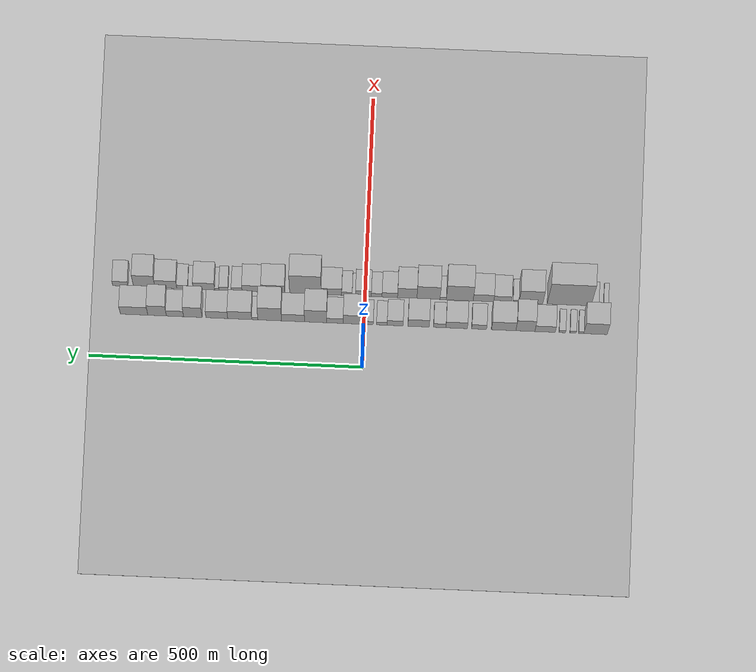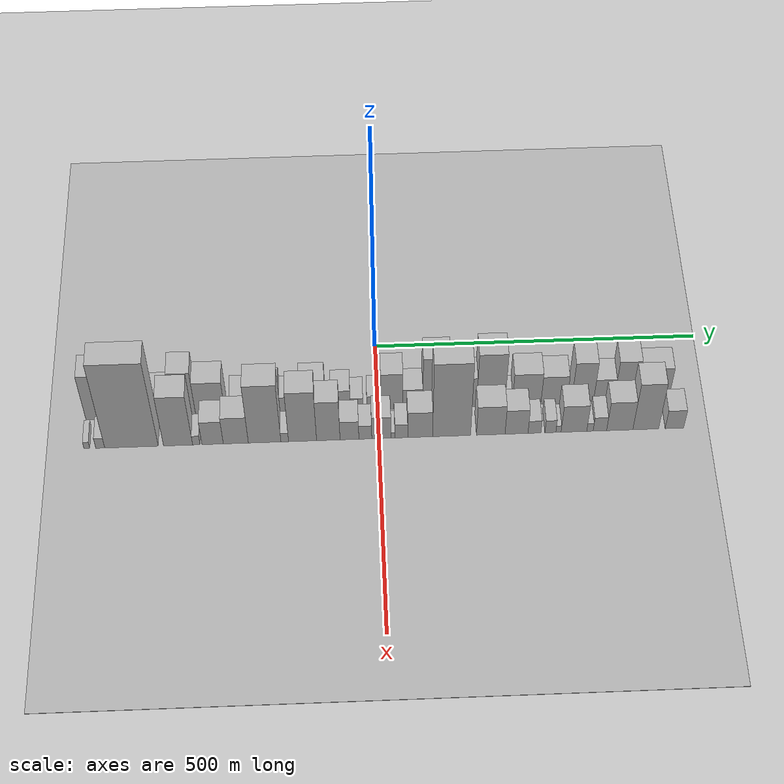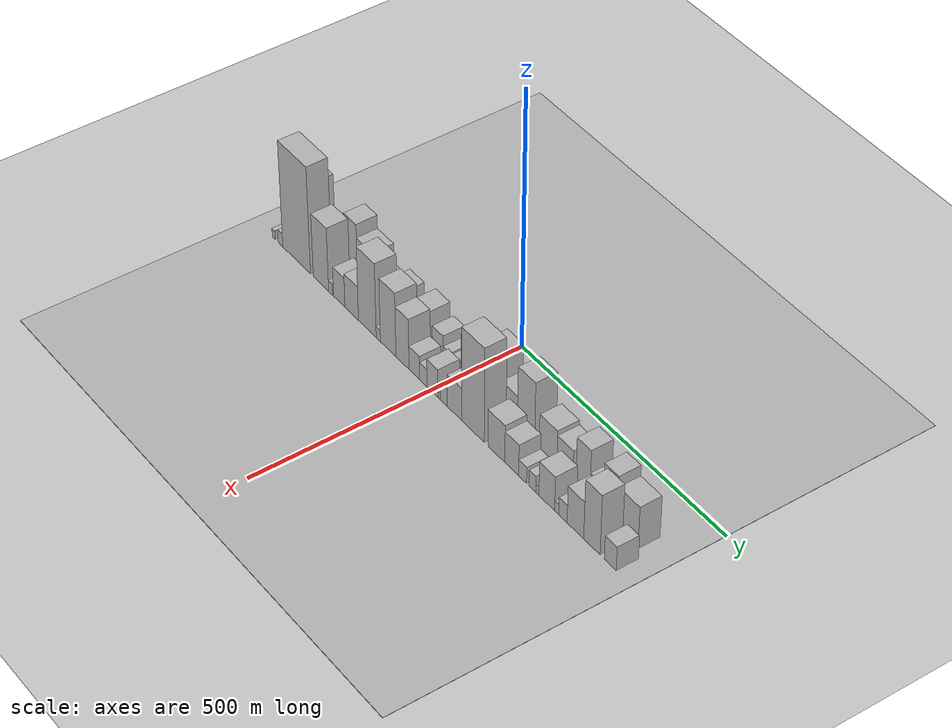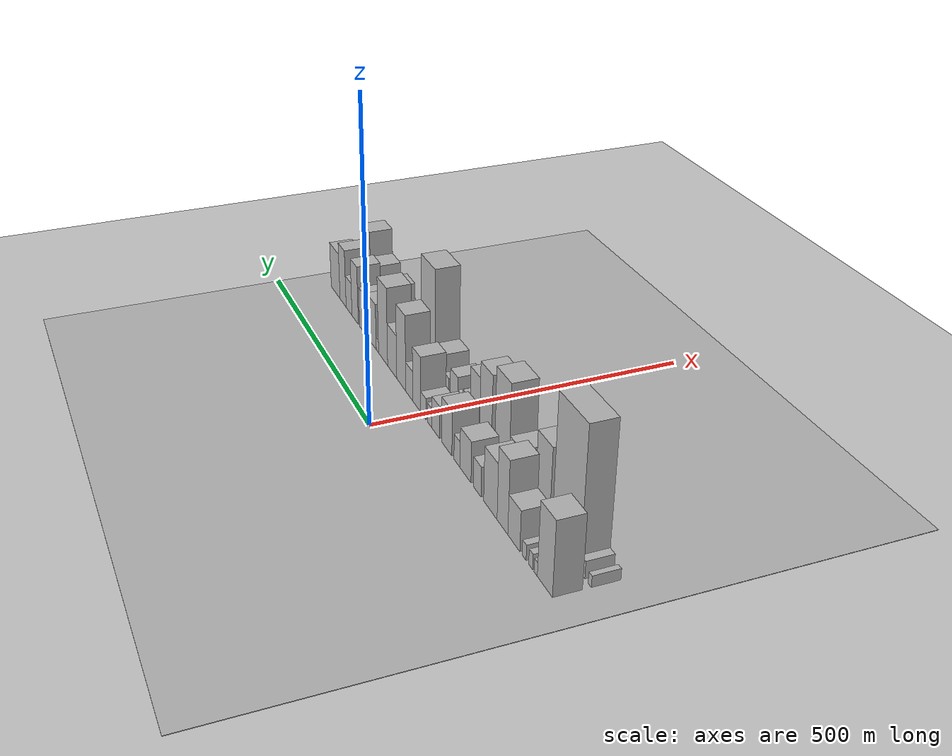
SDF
<sdf version="1.6">
 <world name="default">
  <include><name>ground_plane_1</name><uri>model://HANNAS_ground_plane</uri></include>
  <include>
   <name>ground_plane_2</name>
   <uri>model://HANNAS_ground_plane</uri>
   <pose>100 0 0  0 0 0</pose>
  </include>
  <model name="building_1">
   <static>1</static>
   <pose>100.0000 -422.5716 0 0.000000 0.000000 0.000000</pose>
   <link name="link">
    <pose>0 0 57.00 0 0 0</pose>
    <collision name="collision"><geometry><box><size>40.0000 42.8567 114.0000</size></box></geometry></collision>
    <visual name="visual">
     <cast_shadows>0</cast_shadows>
     <geometry><box><size>40.0000 42.8567 114.0000</size></box></geometry>
     <material>
      <script>
       <uri>model://HANNAS_wall/materials/scripts</uri>
       <uri>model://HANNAS_wall/materials/textures</uri>
       <name>vrc/HANNAS_wall</name>
      </script>
     </material>
    </visual>
   </link>
  </model>
  <model name="building_2">
   <static>1</static>
   <pose>100.0000 -396.2566 0 0.000000 0.000000 0.000000</pose>
   <link name="link">
    <pose>0 0 10.50 0 0 0</pose>
    <collision name="collision"><geometry><box><size>40.0000 9.7734 21.0000</size></box></geometry></collision>
    <visual name="visual">
     <cast_shadows>0</cast_shadows>
     <geometry><box><size>40.0000 9.7734 21.0000</size></box></geometry>
     <material>
      <script>
       <uri>model://HANNAS_wall/materials/scripts</uri>
       <uri>model://HANNAS_wall/materials/textures</uri>
       <name>vrc/HANNAS_wall</name>
      </script>
     </material>
    </visual>
   </link>
  </model>
  <model name="building_3">
   <static>1</static>
   <pose>100.0000 -381.5733 0 0.000000 0.000000 0.000000</pose>
   <link name="link">
    <pose>0 0 12.00 0 0 0</pose>
    <collision name="collision"><geometry><box><size>40.0000 11.5931 24.0000</size></box></geometry></collision>
    <visual name="visual">
     <cast_shadows>0</cast_shadows>
     <geometry><box><size>40.0000 11.5931 24.0000</size></box></geometry>
     <material>
      <script>
       <uri>model://HANNAS_wall/materials/scripts</uri>
       <uri>model://HANNAS_wall/materials/textures</uri>
       <name>vrc/HANNAS_wall</name>
      </script>
     </material>
    </visual>
   </link>
  </model>
  <model name="building_4">
   <static>1</static>
   <pose>100.0000 -361.8860 0 0.000000 0.000000 0.000000</pose>
   <link name="link">
    <pose>0 0 12.00 0 0 0</pose>
    <collision name="collision"><geometry><box><size>40.0000 11.7815 24.0000</size></box></geometry></collision>
    <visual name="visual">
     <cast_shadows>0</cast_shadows>
     <geometry><box><size>40.0000 11.7815 24.0000</size></box></geometry>
     <material>
      <script>
       <uri>model://HANNAS_wall/materials/scripts</uri>
       <uri>model://HANNAS_wall/materials/textures</uri>
       <name>vrc/HANNAS_wall</name>
      </script>
     </material>
    </visual>
   </link>
  </model>
  <model name="building_5">
   <static>1</static>
   <pose>100.0000 -330.3271 0 0.000000 0.000000 0.000000</pose>
   <link name="link">
    <pose>0 0 31.50 0 0 0</pose>
    <collision name="collision"><geometry><box><size>40.0000 37.3363 63.0000</size></box></geometry></collision>
    <visual name="visual">
     <cast_shadows>0</cast_shadows>
     <geometry><box><size>40.0000 37.3363 63.0000</size></box></geometry>
     <material>
      <script>
       <uri>model://HANNAS_wall/materials/scripts</uri>
       <uri>model://HANNAS_wall/materials/textures</uri>
       <name>vrc/HANNAS_wall</name>
      </script>
     </material>
    </visual>
   </link>
  </model>
  <model name="building_6">
   <static>1</static>
   <pose>100.0000 -294.3224 0 0.000000 0.000000 0.000000</pose>
   <link name="link">
    <pose>0 0 57.00 0 0 0</pose>
    <collision name="collision"><geometry><box><size>40.0000 34.6731 114.0000</size></box></geometry></collision>
    <visual name="visual">
     <cast_shadows>0</cast_shadows>
     <geometry><box><size>40.0000 34.6731 114.0000</size></box></geometry>
     <material>
      <script>
       <uri>model://HANNAS_wall/materials/scripts</uri>
       <uri>model://HANNAS_wall/materials/textures</uri>
       <name>vrc/HANNAS_wall</name>
      </script>
     </material>
    </visual>
   </link>
  </model>
  <model name="building_7">
   <static>1</static>
   <pose>100.0000 -254.6565 0 0.000000 0.000000 0.000000</pose>
   <link name="link">
    <pose>0 0 43.50 0 0 0</pose>
    <collision name="collision"><geometry><box><size>40.0000 44.6588 87.0000</size></box></geometry></collision>
    <visual name="visual">
     <cast_shadows>0</cast_shadows>
     <geometry><box><size>40.0000 44.6588 87.0000</size></box></geometry>
     <material>
      <script>
       <uri>model://HANNAS_wall/materials/scripts</uri>
       <uri>model://HANNAS_wall/materials/textures</uri>
       <name>vrc/HANNAS_wall</name>
      </script>
     </material>
    </visual>
   </link>
  </model>
  <model name="building_8">
   <static>1</static>
   <pose>100.0000 -209.7576 0 0.000000 0.000000 0.000000</pose>
   <link name="link">
    <pose>0 0 24.00 0 0 0</pose>
    <collision name="collision"><geometry><box><size>40.0000 27.1389 48.0000</size></box></geometry></collision>
    <visual name="visual">
     <cast_shadows>0</cast_shadows>
     <geometry><box><size>40.0000 27.1389 48.0000</size></box></geometry>
     <material>
      <script>
       <uri>model://HANNAS_wall/materials/scripts</uri>
       <uri>model://HANNAS_wall/materials/textures</uri>
       <name>vrc/HANNAS_wall</name>
      </script>
     </material>
    </visual>
   </link>
  </model>
  <model name="building_9">
   <static>1</static>
   <pose>100.0000 -168.5435 0 0.000000 0.000000 0.000000</pose>
   <link name="link">
    <pose>0 0 33.00 0 0 0</pose>
    <collision name="collision"><geometry><box><size>40.0000 39.2893 66.0000</size></box></geometry></collision>
    <visual name="visual">
     <cast_shadows>0</cast_shadows>
     <geometry><box><size>40.0000 39.2893 66.0000</size></box></geometry>
     <material>
      <script>
       <uri>model://HANNAS_wall/materials/scripts</uri>
       <uri>model://HANNAS_wall/materials/textures</uri>
       <name>vrc/HANNAS_wall</name>
      </script>
     </material>
    </visual>
   </link>
  </model>
  <model name="building_10">
   <static>1</static>
   <pose>100.0000 -137.6953 0 0.000000 0.000000 0.000000</pose>
   <link name="link">
    <pose>0 0 21.00 0 0 0</pose>
    <collision name="collision"><geometry><box><size>40.0000 22.4071 42.0000</size></box></geometry></collision>
    <visual name="visual">
     <cast_shadows>0</cast_shadows>
     <geometry><box><size>40.0000 22.4071 42.0000</size></box></geometry>
     <material>
      <script>
       <uri>model://HANNAS_wall/materials/scripts</uri>
       <uri>model://HANNAS_wall/materials/textures</uri>
       <name>vrc/HANNAS_wall</name>
      </script>
     </material>
    </visual>
   </link>
  </model>
  <model name="building_11">
   <static>1</static>
   <pose>100.0000 -99.1047 0 0.000000 0.000000 0.000000</pose>
   <link name="link">
    <pose>0 0 37.50 0 0 0</pose>
    <collision name="collision"><geometry><box><size>40.0000 38.7741 75.0000</size></box></geometry></collision>
    <visual name="visual">
     <cast_shadows>0</cast_shadows>
     <geometry><box><size>40.0000 38.7741 75.0000</size></box></geometry>
     <material>
      <script>
       <uri>model://HANNAS_wall/materials/scripts</uri>
       <uri>model://HANNAS_wall/materials/textures</uri>
       <name>vrc/HANNAS_wall</name>
      </script>
     </material>
    </visual>
   </link>
  </model>
  <model name="building_12">
   <static>1</static>
   <pose>100.0000 -56.1446 0 0.000000 0.000000 0.000000</pose>
   <link name="link">
    <pose>0 0 27.00 0 0 0</pose>
    <collision name="collision"><geometry><box><size>40.0000 29.1462 54.0000</size></box></geometry></collision>
    <visual name="visual">
     <cast_shadows>0</cast_shadows>
     <geometry><box><size>40.0000 29.1462 54.0000</size></box></geometry>
     <material>
      <script>
       <uri>model://HANNAS_wall/materials/scripts</uri>
       <uri>model://HANNAS_wall/materials/textures</uri>
       <name>vrc/HANNAS_wall</name>
      </script>
     </material>
    </visual>
   </link>
  </model>
  <model name="building_13">
   <static>1</static>
   <pose>100.0000 -31.8680 0 0.000000 0.000000 0.000000</pose>
   <link name="link">
    <pose>0 0 16.50 0 0 0</pose>
    <collision name="collision"><geometry><box><size>40.0000 19.4069 33.0000</size></box></geometry></collision>
    <visual name="visual">
     <cast_shadows>0</cast_shadows>
     <geometry><box><size>40.0000 19.4069 33.0000</size></box></geometry>
     <material>
      <script>
       <uri>model://HANNAS_wall/materials/scripts</uri>
       <uri>model://HANNAS_wall/materials/textures</uri>
       <name>vrc/HANNAS_wall</name>
      </script>
     </material>
    </visual>
   </link>
  </model>
  <model name="building_14">
   <static>1</static>
   <pose>100.0000 -5.4731 0 0.000000 0.000000 0.000000</pose>
   <link name="link">
    <pose>0 0 18.00 0 0 0</pose>
    <collision name="collision"><geometry><box><size>40.0000 21.3829 36.0000</size></box></geometry></collision>
    <visual name="visual">
     <cast_shadows>0</cast_shadows>
     <geometry><box><size>40.0000 21.3829 36.0000</size></box></geometry>
     <material>
      <script>
       <uri>model://HANNAS_wall/materials/scripts</uri>
       <uri>model://HANNAS_wall/materials/textures</uri>
       <name>vrc/HANNAS_wall</name>
      </script>
     </material>
    </visual>
   </link>
  </model>
  <model name="building_15">
   <static>1</static>
   <pose>100.0000 21.9943 0 0.000000 0.000000 0.000000</pose>
   <link name="link">
    <pose>0 0 46.50 0 0 0</pose>
    <collision name="collision"><geometry><box><size>40.0000 33.5518 93.0000</size></box></geometry></collision>
    <visual name="visual">
     <cast_shadows>0</cast_shadows>
     <geometry><box><size>40.0000 33.5518 93.0000</size></box></geometry>
     <material>
      <script>
       <uri>model://HANNAS_wall/materials/scripts</uri>
       <uri>model://HANNAS_wall/materials/textures</uri>
       <name>vrc/HANNAS_wall</name>
      </script>
     </material>
    </visual>
   </link>
  </model>
  <model name="building_16">
   <static>1</static>
   <pose>100.0000 53.8371 0 0.000000 0.000000 0.000000</pose>
   <link name="link">
    <pose>0 0 25.50 0 0 0</pose>
    <collision name="collision"><geometry><box><size>40.0000 30.1340 51.0000</size></box></geometry></collision>
    <visual name="visual">
     <cast_shadows>0</cast_shadows>
     <geometry><box><size>40.0000 30.1340 51.0000</size></box></geometry>
     <material>
      <script>
       <uri>model://HANNAS_wall/materials/scripts</uri>
       <uri>model://HANNAS_wall/materials/textures</uri>
       <name>vrc/HANNAS_wall</name>
      </script>
     </material>
    </visual>
   </link>
  </model>
  <model name="building_17">
   <static>1</static>
   <pose>100.0000 89.1470 0 0.000000 0.000000 0.000000</pose>
   <link name="link">
    <pose>0 0 64.50 0 0 0</pose>
    <collision name="collision"><geometry><box><size>40.0000 40.4858 129.0000</size></box></geometry></collision>
    <visual name="visual">
     <cast_shadows>0</cast_shadows>
     <geometry><box><size>40.0000 40.4858 129.0000</size></box></geometry>
     <material>
      <script>
       <uri>model://HANNAS_wall/materials/scripts</uri>
       <uri>model://HANNAS_wall/materials/textures</uri>
       <name>vrc/HANNAS_wall</name>
      </script>
     </material>
    </visual>
   </link>
  </model>
  <model name="building_18">
   <static>1</static>
   <pose>100.0000 130.3772 0 0.000000 0.000000 0.000000</pose>
   <link name="link">
    <pose>0 0 37.50 0 0 0</pose>
    <collision name="collision"><geometry><box><size>40.0000 41.9746 75.0000</size></box></geometry></collision>
    <visual name="visual">
     <cast_shadows>0</cast_shadows>
     <geometry><box><size>40.0000 41.9746 75.0000</size></box></geometry>
     <material>
      <script>
       <uri>model://HANNAS_wall/materials/scripts</uri>
       <uri>model://HANNAS_wall/materials/textures</uri>
       <name>vrc/HANNAS_wall</name>
      </script>
     </material>
    </visual>
   </link>
  </model>
  <model name="building_19">
   <static>1</static>
   <pose>100.0000 173.0050 0 0.000000 0.000000 0.000000</pose>
   <link name="link">
    <pose>0 0 67.50 0 0 0</pose>
    <collision name="collision"><geometry><box><size>40.0000 43.2809 135.0000</size></box></geometry></collision>
    <visual name="visual">
     <cast_shadows>0</cast_shadows>
     <geometry><box><size>40.0000 43.2809 135.0000</size></box></geometry>
     <material>
      <script>
       <uri>model://HANNAS_wall/materials/scripts</uri>
       <uri>model://HANNAS_wall/materials/textures</uri>
       <name>vrc/HANNAS_wall</name>
      </script>
     </material>
    </visual>
   </link>
  </model>
  <model name="building_20">
   <static>1</static>
   <pose>100.0000 200.3186 0 0.000000 0.000000 0.000000</pose>
   <link name="link">
    <pose>0 0 12.00 0 0 0</pose>
    <collision name="collision"><geometry><box><size>40.0000 11.3463 24.0000</size></box></geometry></collision>
    <visual name="visual">
     <cast_shadows>0</cast_shadows>
     <geometry><box><size>40.0000 11.3463 24.0000</size></box></geometry>
     <material>
      <script>
       <uri>model://HANNAS_wall/materials/scripts</uri>
       <uri>model://HANNAS_wall/materials/textures</uri>
       <name>vrc/HANNAS_wall</name>
      </script>
     </material>
    </visual>
   </link>
  </model>
  <model name="building_21">
   <static>1</static>
   <pose>100.0000 227.9057 0 0.000000 0.000000 0.000000</pose>
   <link name="link">
    <pose>0 0 40.50 0 0 0</pose>
    <collision name="collision"><geometry><box><size>40.0000 43.8278 81.0000</size></box></geometry></collision>
    <visual name="visual">
     <cast_shadows>0</cast_shadows>
     <geometry><box><size>40.0000 43.8278 81.0000</size></box></geometry>
     <material>
      <script>
       <uri>model://HANNAS_wall/materials/scripts</uri>
       <uri>model://HANNAS_wall/materials/textures</uri>
       <name>vrc/HANNAS_wall</name>
      </script>
     </material>
    </visual>
   </link>
  </model>
  <model name="building_22">
   <static>1</static>
   <pose>100.0000 269.7281 0 0.000000 0.000000 0.000000</pose>
   <link name="link">
    <pose>0 0 36.00 0 0 0</pose>
    <collision name="collision"><geometry><box><size>40.0000 39.8171 72.0000</size></box></geometry></collision>
    <visual name="visual">
     <cast_shadows>0</cast_shadows>
     <geometry><box><size>40.0000 39.8171 72.0000</size></box></geometry>
     <material>
      <script>
       <uri>model://HANNAS_wall/materials/scripts</uri>
       <uri>model://HANNAS_wall/materials/textures</uri>
       <name>vrc/HANNAS_wall</name>
      </script>
     </material>
    </visual>
   </link>
  </model>
  <model name="building_23">
   <static>1</static>
   <pose>100.0000 313.5519 0 0.000000 0.000000 0.000000</pose>
   <link name="link">
    <pose>0 0 52.50 0 0 0</pose>
    <collision name="collision"><geometry><box><size>40.0000 33.8306 105.0000</size></box></geometry></collision>
    <visual name="visual">
     <cast_shadows>0</cast_shadows>
     <geometry><box><size>40.0000 33.8306 105.0000</size></box></geometry>
     <material>
      <script>
       <uri>model://HANNAS_wall/materials/scripts</uri>
       <uri>model://HANNAS_wall/materials/textures</uri>
       <name>vrc/HANNAS_wall</name>
      </script>
     </material>
    </visual>
   </link>
  </model>
  <model name="building_24">
   <static>1</static>
   <pose>100.0000 346.1967 0 0.000000 0.000000 0.000000</pose>
   <link name="link">
    <pose>0 0 30.00 0 0 0</pose>
    <collision name="collision"><geometry><box><size>40.0000 31.4590 60.0000</size></box></geometry></collision>
    <visual name="visual">
     <cast_shadows>0</cast_shadows>
     <geometry><box><size>40.0000 31.4590 60.0000</size></box></geometry>
     <material>
      <script>
       <uri>model://HANNAS_wall/materials/scripts</uri>
       <uri>model://HANNAS_wall/materials/textures</uri>
       <name>vrc/HANNAS_wall</name>
      </script>
     </material>
    </visual>
   </link>
  </model>
  <model name="building_25">
   <static>1</static>
   <pose>100.0000 378.9110 0 0.000000 0.000000 0.000000</pose>
   <link name="link">
    <pose>0 0 52.50 0 0 0</pose>
    <collision name="collision"><geometry><box><size>40.0000 33.9696 105.0000</size></box></geometry></collision>
    <visual name="visual">
     <cast_shadows>0</cast_shadows>
     <geometry><box><size>40.0000 33.9696 105.0000</size></box></geometry>
     <material>
      <script>
       <uri>model://HANNAS_wall/materials/scripts</uri>
       <uri>model://HANNAS_wall/materials/textures</uri>
       <name>vrc/HANNAS_wall</name>
      </script>
     </material>
    </visual>
   </link>
  </model>
  <model name="building_26">
   <static>1</static>
   <pose>100.0000 421.0413 0 0.000000 0.000000 0.000000</pose>
   <link name="link">
    <pose>0 0 42.00 0 0 0</pose>
    <collision name="collision"><geometry><box><size>40.0000 50.2909 84.0000</size></box></geometry></collision>
    <visual name="visual">
     <cast_shadows>0</cast_shadows>
     <geometry><box><size>40.0000 50.2909 84.0000</size></box></geometry>
     <material>
      <script>
       <uri>model://HANNAS_wall/materials/scripts</uri>
       <uri>model://HANNAS_wall/materials/textures</uri>
       <name>vrc/HANNAS_wall</name>
      </script>
     </material>
    </visual>
   </link>
  </model>
  <model name="building_27">
   <static>1</static>
   <pose>152.0000 -439.6267 0 0.000000 0.000000 0.000000</pose>
   <link name="link">
    <pose>0 0 9.00 0 0 0</pose>
    <collision name="collision"><geometry><box><size>40.0000 8.7467 18.0000</size></box></geometry></collision>
    <visual name="visual">
     <cast_shadows>0</cast_shadows>
     <geometry><box><size>40.0000 8.7467 18.0000</size></box></geometry>
     <material>
      <script>
       <uri>model://HANNAS_wall/materials/scripts</uri>
       <uri>model://HANNAS_wall/materials/textures</uri>
       <name>vrc/HANNAS_wall</name>
      </script>
     </material>
    </visual>
   </link>
  </model>
  <model name="building_28">
   <static>1</static>
   <pose>152.0000 -419.5399 0 0.000000 0.000000 0.000000</pose>
   <link name="link">
    <pose>0 0 13.50 0 0 0</pose>
    <collision name="collision"><geometry><box><size>40.0000 13.4268 27.0000</size></box></geometry></collision>
    <visual name="visual">
     <cast_shadows>0</cast_shadows>
     <geometry><box><size>40.0000 13.4268 27.0000</size></box></geometry>
     <material>
      <script>
       <uri>model://HANNAS_wall/materials/scripts</uri>
       <uri>model://HANNAS_wall/materials/textures</uri>
       <name>vrc/HANNAS_wall</name>
      </script>
     </material>
    </visual>
   </link>
  </model>
  <model name="building_29">
   <static>1</static>
   <pose>152.0000 -372.6098 0 0.000000 0.000000 0.000000</pose>
   <link name="link">
    <pose>0 0 108.00 0 0 0</pose>
    <collision name="collision"><geometry><box><size>40.0000 80.4334 216.0000</size></box></geometry></collision>
    <visual name="visual">
     <cast_shadows>0</cast_shadows>
     <geometry><box><size>40.0000 80.4334 216.0000</size></box></geometry>
     <material>
      <script>
       <uri>model://HANNAS_wall/materials/scripts</uri>
       <uri>model://HANNAS_wall/materials/textures</uri>
       <name>vrc/HANNAS_wall</name>
      </script>
     </material>
    </visual>
   </link>
  </model>
  <model name="building_30">
   <static>1</static>
   <pose>152.0000 -302.5058 0 0.000000 0.000000 0.000000</pose>
   <link name="link">
    <pose>0 0 64.50 0 0 0</pose>
    <collision name="collision"><geometry><box><size>40.0000 43.7744 129.0000</size></box></geometry></collision>
    <visual name="visual">
     <cast_shadows>0</cast_shadows>
     <geometry><box><size>40.0000 43.7744 129.0000</size></box></geometry>
     <material>
      <script>
       <uri>model://HANNAS_wall/materials/scripts</uri>
       <uri>model://HANNAS_wall/materials/textures</uri>
       <name>vrc/HANNAS_wall</name>
      </script>
     </material>
    </visual>
   </link>
  </model>
  <model name="building_31">
   <static>1</static>
   <pose>152.0000 -275.1487 0 0.000000 0.000000 0.000000</pose>
   <link name="link">
    <pose>0 0 12.00 0 0 0</pose>
    <collision name="collision"><geometry><box><size>40.0000 10.9399 24.0000</size></box></geometry></collision>
    <visual name="visual">
     <cast_shadows>0</cast_shadows>
     <geometry><box><size>40.0000 10.9399 24.0000</size></box></geometry>
     <material>
      <script>
       <uri>model://HANNAS_wall/materials/scripts</uri>
       <uri>model://HANNAS_wall/materials/textures</uri>
       <name>vrc/HANNAS_wall</name>
      </script>
     </material>
    </visual>
   </link>
  </model>
  <model name="building_32">
   <static>1</static>
   <pose>152.0000 -250.6332 0 0.000000 0.000000 0.000000</pose>
   <link name="link">
    <pose>0 0 30.00 0 0 0</pose>
    <collision name="collision"><geometry><box><size>40.0000 32.0910 60.0000</size></box></geometry></collision>
    <visual name="visual">
     <cast_shadows>0</cast_shadows>
     <geometry><box><size>40.0000 32.0910 60.0000</size></box></geometry>
     <material>
      <script>
       <uri>model://HANNAS_wall/materials/scripts</uri>
       <uri>model://HANNAS_wall/materials/textures</uri>
       <name>vrc/HANNAS_wall</name>
      </script>
     </material>
    </visual>
   </link>
  </model>
  <model name="building_33">
   <static>1</static>
   <pose>152.0000 -215.6868 0 0.000000 0.000000 0.000000</pose>
   <link name="link">
    <pose>0 0 34.50 0 0 0</pose>
    <collision name="collision"><geometry><box><size>40.0000 37.8018 69.0000</size></box></geometry></collision>
    <visual name="visual">
     <cast_shadows>0</cast_shadows>
     <geometry><box><size>40.0000 37.8018 69.0000</size></box></geometry>
     <material>
      <script>
       <uri>model://HANNAS_wall/materials/scripts</uri>
       <uri>model://HANNAS_wall/materials/textures</uri>
       <name>vrc/HANNAS_wall</name>
      </script>
     </material>
    </visual>
   </link>
  </model>
  <model name="building_34">
   <static>1</static>
   <pose>152.0000 -172.2605 0 0.000000 0.000000 0.000000</pose>
   <link name="link">
    <pose>0 0 75.00 0 0 0</pose>
    <collision name="collision"><geometry><box><size>40.0000 49.0510 150.0000</size></box></geometry></collision>
    <visual name="visual">
     <cast_shadows>0</cast_shadows>
     <geometry><box><size>40.0000 49.0510 150.0000</size></box></geometry>
     <material>
      <script>
       <uri>model://HANNAS_wall/materials/scripts</uri>
       <uri>model://HANNAS_wall/materials/textures</uri>
       <name>vrc/HANNAS_wall</name>
      </script>
     </material>
    </visual>
   </link>
  </model>
  <model name="building_35">
   <static>1</static>
   <pose>152.0000 -141.9808 0 0.000000 0.000000 0.000000</pose>
   <link name="link">
    <pose>0 0 12.00 0 0 0</pose>
    <collision name="collision"><geometry><box><size>40.0000 11.5083 24.0000</size></box></geometry></collision>
    <visual name="visual">
     <cast_shadows>0</cast_shadows>
     <geometry><box><size>40.0000 11.5083 24.0000</size></box></geometry>
     <material>
      <script>
       <uri>model://HANNAS_wall/materials/scripts</uri>
       <uri>model://HANNAS_wall/materials/textures</uri>
       <name>vrc/HANNAS_wall</name>
      </script>
     </material>
    </visual>
   </link>
  </model>
  <model name="building_36">
   <static>1</static>
   <pose>152.0000 -115.0605 0 0.000000 0.000000 0.000000</pose>
   <link name="link">
    <pose>0 0 64.50 0 0 0</pose>
    <collision name="collision"><geometry><box><size>40.0000 42.3325 129.0000</size></box></geometry></collision>
    <visual name="visual">
     <cast_shadows>0</cast_shadows>
     <geometry><box><size>40.0000 42.3325 129.0000</size></box></geometry>
     <material>
      <script>
       <uri>model://HANNAS_wall/materials/scripts</uri>
       <uri>model://HANNAS_wall/materials/textures</uri>
       <name>vrc/HANNAS_wall</name>
      </script>
     </material>
    </visual>
   </link>
  </model>
  <model name="building_37">
   <static>1</static>
   <pose>152.0000 -76.1947 0 0.000000 0.000000 0.000000</pose>
   <link name="link">
    <pose>0 0 51.00 0 0 0</pose>
    <collision name="collision"><geometry><box><size>40.0000 35.3992 102.0000</size></box></geometry></collision>
    <visual name="visual">
     <cast_shadows>0</cast_shadows>
     <geometry><box><size>40.0000 35.3992 102.0000</size></box></geometry>
     <material>
      <script>
       <uri>model://HANNAS_wall/materials/scripts</uri>
       <uri>model://HANNAS_wall/materials/textures</uri>
       <name>vrc/HANNAS_wall</name>
      </script>
     </material>
    </visual>
   </link>
  </model>
  <model name="building_38">
   <static>1</static>
   <pose>152.0000 -44.2855 0 0.000000 0.000000 0.000000</pose>
   <link name="link">
    <pose>0 0 24.00 0 0 0</pose>
    <collision name="collision"><geometry><box><size>40.0000 28.4192 48.0000</size></box></geometry></collision>
    <visual name="visual">
     <cast_shadows>0</cast_shadows>
     <geometry><box><size>40.0000 28.4192 48.0000</size></box></geometry>
     <material>
      <script>
       <uri>model://HANNAS_wall/materials/scripts</uri>
       <uri>model://HANNAS_wall/materials/textures</uri>
       <name>vrc/HANNAS_wall</name>
      </script>
     </material>
    </visual>
   </link>
  </model>
  <model name="building_39">
   <static>1</static>
   <pose>152.0000 -20.3152 0 0.000000 0.000000 0.000000</pose>
   <link name="link">
    <pose>0 0 18.00 0 0 0</pose>
    <collision name="collision"><geometry><box><size>40.0000 19.5214 36.0000</size></box></geometry></collision>
    <visual name="visual">
     <cast_shadows>0</cast_shadows>
     <geometry><box><size>40.0000 19.5214 36.0000</size></box></geometry>
     <material>
      <script>
       <uri>model://HANNAS_wall/materials/scripts</uri>
       <uri>model://HANNAS_wall/materials/textures</uri>
       <name>vrc/HANNAS_wall</name>
      </script>
     </material>
    </visual>
   </link>
  </model>
  <model name="building_40">
   <static>1</static>
   <pose>152.0000 3.9851 0 0.000000 0.000000 0.000000</pose>
   <link name="link">
    <pose>0 0 28.50 0 0 0</pose>
    <collision name="collision"><geometry><box><size>40.0000 29.0792 57.0000</size></box></geometry></collision>
    <visual name="visual">
     <cast_shadows>0</cast_shadows>
     <geometry><box><size>40.0000 29.0792 57.0000</size></box></geometry>
     <material>
      <script>
       <uri>model://HANNAS_wall/materials/scripts</uri>
       <uri>model://HANNAS_wall/materials/textures</uri>
       <name>vrc/HANNAS_wall</name>
      </script>
     </material>
    </visual>
   </link>
  </model>
  <model name="building_41">
   <static>1</static>
   <pose>152.0000 21.5248 0 0.000000 0.000000 0.000000</pose>
   <link name="link">
    <pose>0 0 7.50 0 0 0</pose>
    <collision name="collision"><geometry><box><size>40.0000 6.0003 15.0000</size></box></geometry></collision>
    <visual name="visual">
     <cast_shadows>0</cast_shadows>
     <geometry><box><size>40.0000 6.0003 15.0000</size></box></geometry>
     <material>
      <script>
       <uri>model://HANNAS_wall/materials/scripts</uri>
       <uri>model://HANNAS_wall/materials/textures</uri>
       <name>vrc/HANNAS_wall</name>
      </script>
     </material>
    </visual>
   </link>
  </model>
  <model name="building_42">
   <static>1</static>
   <pose>152.0000 34.1071 0 0.000000 0.000000 0.000000</pose>
   <link name="link">
    <pose>0 0 18.00 0 0 0</pose>
    <collision name="collision"><geometry><box><size>40.0000 19.1642 36.0000</size></box></geometry></collision>
    <visual name="visual">
     <cast_shadows>0</cast_shadows>
     <geometry><box><size>40.0000 19.1642 36.0000</size></box></geometry>
     <material>
      <script>
       <uri>model://HANNAS_wall/materials/scripts</uri>
       <uri>model://HANNAS_wall/materials/textures</uri>
       <name>vrc/HANNAS_wall</name>
      </script>
     </material>
    </visual>
   </link>
  </model>
  <model name="building_43">
   <static>1</static>
   <pose>152.0000 62.4982 0 0.000000 0.000000 0.000000</pose>
   <link name="link">
    <pose>0 0 33.00 0 0 0</pose>
    <collision name="collision"><geometry><box><size>40.0000 37.6181 66.0000</size></box></geometry></collision>
    <visual name="visual">
     <cast_shadows>0</cast_shadows>
     <geometry><box><size>40.0000 37.6181 66.0000</size></box></geometry>
     <material>
      <script>
       <uri>model://HANNAS_wall/materials/scripts</uri>
       <uri>model://HANNAS_wall/materials/textures</uri>
       <name>vrc/HANNAS_wall</name>
      </script>
     </material>
    </visual>
   </link>
  </model>
  <model name="building_44">
   <static>1</static>
   <pose>152.0000 110.1167 0 0.000000 0.000000 0.000000</pose>
   <link name="link">
    <pose>0 0 94.50 0 0 0</pose>
    <collision name="collision"><geometry><box><size>40.0000 57.6191 189.0000</size></box></geometry></collision>
    <visual name="visual">
     <cast_shadows>0</cast_shadows>
     <geometry><box><size>40.0000 57.6191 189.0000</size></box></geometry>
     <material>
      <script>
       <uri>model://HANNAS_wall/materials/scripts</uri>
       <uri>model://HANNAS_wall/materials/textures</uri>
       <name>vrc/HANNAS_wall</name>
      </script>
     </material>
    </visual>
   </link>
  </model>
  <model name="building_45">
   <static>1</static>
   <pose>152.0000 169.5529 0 0.000000 0.000000 0.000000</pose>
   <link name="link">
    <pose>0 0 37.50 0 0 0</pose>
    <collision name="collision"><geometry><box><size>40.0000 43.2534 75.0000</size></box></geometry></collision>
    <visual name="visual">
     <cast_shadows>0</cast_shadows>
     <geometry><box><size>40.0000 43.2534 75.0000</size></box></geometry>
     <material>
      <script>
       <uri>model://HANNAS_wall/materials/scripts</uri>
       <uri>model://HANNAS_wall/materials/textures</uri>
       <name>vrc/HANNAS_wall</name>
      </script>
     </material>
    </visual>
   </link>
  </model>
  <model name="building_46">
   <static>1</static>
   <pose>152.0000 208.6126 0 0.000000 0.000000 0.000000</pose>
   <link name="link">
    <pose>0 0 31.50 0 0 0</pose>
    <collision name="collision"><geometry><box><size>40.0000 34.8659 63.0000</size></box></geometry></collision>
    <visual name="visual">
     <cast_shadows>0</cast_shadows>
     <geometry><box><size>40.0000 34.8659 63.0000</size></box></geometry>
     <material>
      <script>
       <uri>model://HANNAS_wall/materials/scripts</uri>
       <uri>model://HANNAS_wall/materials/textures</uri>
       <name>vrc/HANNAS_wall</name>
      </script>
     </material>
    </visual>
   </link>
  </model>
  <model name="building_47">
   <static>1</static>
   <pose>152.0000 235.8622 0 0.000000 0.000000 0.000000</pose>
   <link name="link">
    <pose>0 0 16.50 0 0 0</pose>
    <collision name="collision"><geometry><box><size>40.0000 19.6334 33.0000</size></box></geometry></collision>
    <visual name="visual">
     <cast_shadows>0</cast_shadows>
     <geometry><box><size>40.0000 19.6334 33.0000</size></box></geometry>
     <material>
      <script>
       <uri>model://HANNAS_wall/materials/scripts</uri>
       <uri>model://HANNAS_wall/materials/textures</uri>
       <name>vrc/HANNAS_wall</name>
      </script>
     </material>
    </visual>
   </link>
  </model>
  <model name="building_48">
   <static>1</static>
   <pose>152.0000 260.0020 0 0.000000 0.000000 0.000000</pose>
   <link name="link">
    <pose>0 0 16.50 0 0 0</pose>
    <collision name="collision"><geometry><box><size>40.0000 16.6463 33.0000</size></box></geometry></collision>
    <visual name="visual">
     <cast_shadows>0</cast_shadows>
     <geometry><box><size>40.0000 16.6463 33.0000</size></box></geometry>
     <material>
      <script>
       <uri>model://HANNAS_wall/materials/scripts</uri>
       <uri>model://HANNAS_wall/materials/textures</uri>
       <name>vrc/HANNAS_wall</name>
      </script>
     </material>
    </visual>
   </link>
  </model>
  <model name="building_49">
   <static>1</static>
   <pose>152.0000 272.2430 0 0.000000 0.000000 0.000000</pose>
   <link name="link">
    <pose>0 0 9.00 0 0 0</pose>
    <collision name="collision"><geometry><box><size>40.0000 7.8358 18.0000</size></box></geometry></collision>
    <visual name="visual">
     <cast_shadows>0</cast_shadows>
     <geometry><box><size>40.0000 7.8358 18.0000</size></box></geometry>
     <material>
      <script>
       <uri>model://HANNAS_wall/materials/scripts</uri>
       <uri>model://HANNAS_wall/materials/textures</uri>
       <name>vrc/HANNAS_wall</name>
      </script>
     </material>
    </visual>
   </link>
  </model>
  <model name="building_50">
   <static>1</static>
   <pose>152.0000 295.6961 0 0.000000 0.000000 0.000000</pose>
   <link name="link">
    <pose>0 0 34.50 0 0 0</pose>
    <collision name="collision"><geometry><box><size>40.0000 39.0704 69.0000</size></box></geometry></collision>
    <visual name="visual">
     <cast_shadows>0</cast_shadows>
     <geometry><box><size>40.0000 39.0704 69.0000</size></box></geometry>
     <material>
      <script>
       <uri>model://HANNAS_wall/materials/scripts</uri>
       <uri>model://HANNAS_wall/materials/textures</uri>
       <name>vrc/HANNAS_wall</name>
      </script>
     </material>
    </visual>
   </link>
  </model>
  <model name="building_51">
   <static>1</static>
   <pose>152.0000 320.1043 0 0.000000 0.000000 0.000000</pose>
   <link name="link">
    <pose>0 0 10.50 0 0 0</pose>
    <collision name="collision"><geometry><box><size>40.0000 9.7459 21.0000</size></box></geometry></collision>
    <visual name="visual">
     <cast_shadows>0</cast_shadows>
     <geometry><box><size>40.0000 9.7459 21.0000</size></box></geometry>
     <material>
      <script>
       <uri>model://HANNAS_wall/materials/scripts</uri>
       <uri>model://HANNAS_wall/materials/textures</uri>
       <name>vrc/HANNAS_wall</name>
      </script>
     </material>
    </visual>
   </link>
  </model>
  <model name="building_52">
   <static>1</static>
   <pose>152.0000 335.2271 0 0.000000 0.000000 0.000000</pose>
   <link name="link">
    <pose>0 0 18.00 0 0 0</pose>
    <collision name="collision"><geometry><box><size>40.0000 20.4998 36.0000</size></box></geometry></collision>
    <visual name="visual">
     <cast_shadows>0</cast_shadows>
     <geometry><box><size>40.0000 20.4998 36.0000</size></box></geometry>
     <material>
      <script>
       <uri>model://HANNAS_wall/materials/scripts</uri>
       <uri>model://HANNAS_wall/materials/textures</uri>
       <name>vrc/HANNAS_wall</name>
      </script>
     </material>
    </visual>
   </link>
  </model>
  <model name="building_53">
   <static>1</static>
   <pose>152.0000 365.4504 0 0.000000 0.000000 0.000000</pose>
   <link name="link">
    <pose>0 0 37.50 0 0 0</pose>
    <collision name="collision"><geometry><box><size>40.0000 39.9467 75.0000</size></box></geometry></collision>
    <visual name="visual">
     <cast_shadows>0</cast_shadows>
     <geometry><box><size>40.0000 39.9467 75.0000</size></box></geometry>
     <material>
      <script>
       <uri>model://HANNAS_wall/materials/scripts</uri>
       <uri>model://HANNAS_wall/materials/textures</uri>
       <name>vrc/HANNAS_wall</name>
      </script>
     </material>
    </visual>
   </link>
  </model>
  <model name="building_54">
   <static>1</static>
   <pose>152.0000 405.0126 0 0.000000 0.000000 0.000000</pose>
   <link name="link">
    <pose>0 0 60.00 0 0 0</pose>
    <collision name="collision"><geometry><box><size>40.0000 39.1778 120.0000</size></box></geometry></collision>
    <visual name="visual">
     <cast_shadows>0</cast_shadows>
     <geometry><box><size>40.0000 39.1778 120.0000</size></box></geometry>
     <material>
      <script>
       <uri>model://HANNAS_wall/materials/scripts</uri>
       <uri>model://HANNAS_wall/materials/textures</uri>
       <name>vrc/HANNAS_wall</name>
      </script>
     </material>
    </visual>
   </link>
  </model>
  <model name="building_55">
   <static>1</static>
   <pose>152.0000 448.6992 0 0.000000 0.000000 0.000000</pose>
   <link name="link">
    <pose>0 0 24.00 0 0 0</pose>
    <collision name="collision"><geometry><box><size>40.0000 28.1955 48.0000</size></box></geometry></collision>
    <visual name="visual">
     <cast_shadows>0</cast_shadows>
     <geometry><box><size>40.0000 28.1955 48.0000</size></box></geometry>
     <material>
      <script>
       <uri>model://HANNAS_wall/materials/scripts</uri>
       <uri>model://HANNAS_wall/materials/textures</uri>
       <name>vrc/HANNAS_wall</name>
      </script>
     </material>
    </visual>
   </link>
  </model>
 </world>
</sdf>
